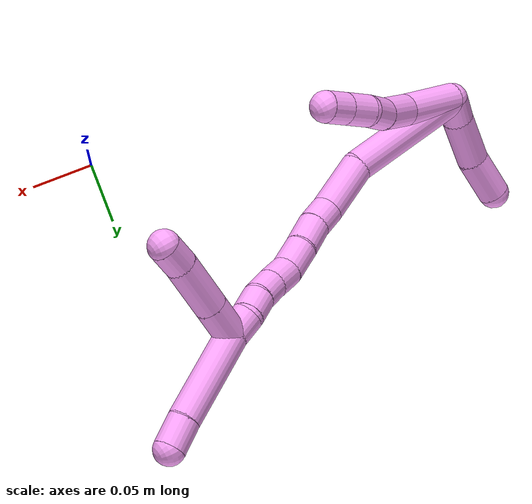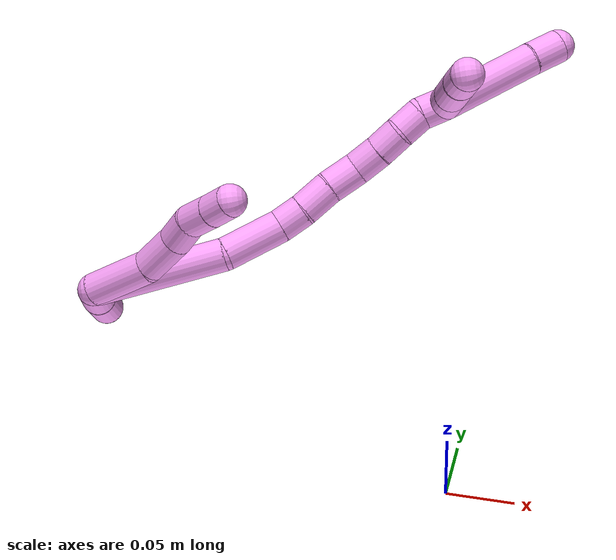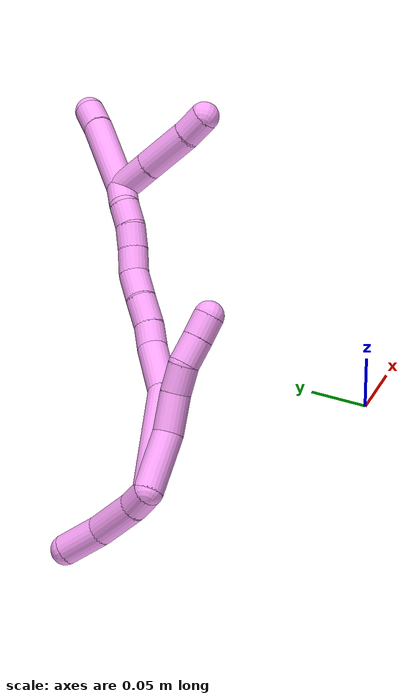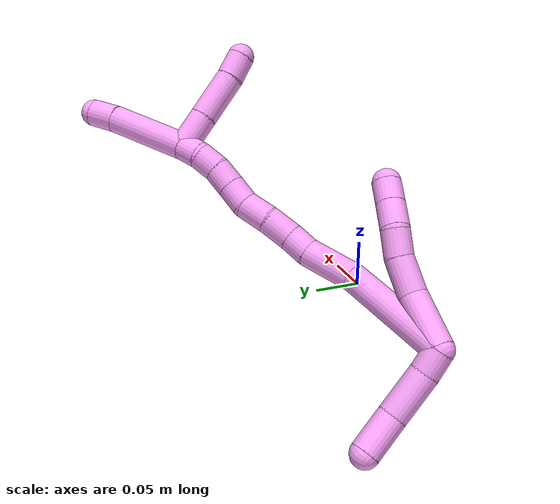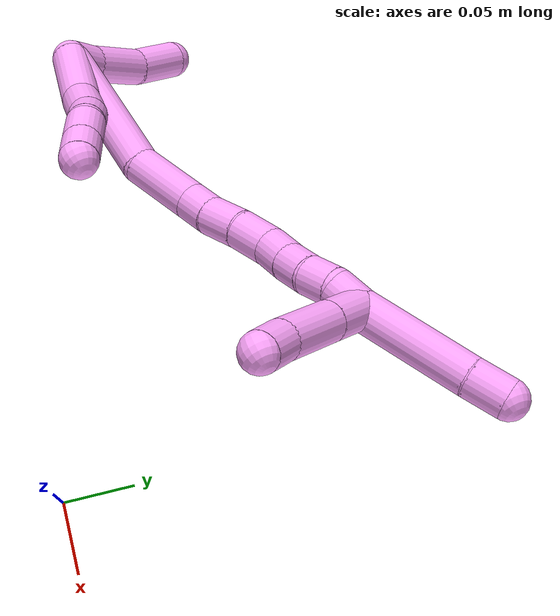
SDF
<sdf version="1.7">
 <world name="default">
  <model name="4">
   <static>0</static>
   <link name="4">
    <collision name="collision-cylinder-e_1_2_8">
     <pose>0.009515 0.000606 -0.023069 -3.11534 0.391075 -3.00923</pose>
     <geometry><cylinder><radius>0.0125</radius><length>0.049923</length></cylinder></geometry>
     <surface>
      <friction><ode><mu>1.16</mu><mu2>1.16</mu2><slip1>0</slip1><slip2>0</slip2></ode></friction>
      <contact><ode><kp>1e+06</kp><kd>1</kd><max_vel>0</max_vel><min_depth>0.001</min_depth></ode></contact>
     </surface>
    </collision>
    <visual name="visual-cylinder-e_1_2_8">
     <pose>0.009515 0.000606 -0.023069 -3.11534 0.391075 -3.00923</pose>
     <geometry><cylinder><radius>0.0125</radius><length>0.049923</length></cylinder></geometry>
     <material><ambient>1 0.65098 0.996078 1</ambient></material>
    </visual>
    <collision name="collision-cylinder-e_2_8_9">
     <pose>0.028454 0.004708 -0.059114 -2.87837 0.611546 -2.34746</pose>
     <geometry><cylinder><radius>0.0125</radius><length>0.032829</length></cylinder></geometry>
     <surface>
      <friction><ode><mu>1.16</mu><mu2>1.16</mu2><slip1>0</slip1><slip2>0</slip2></ode></friction>
      <contact><ode><kp>1e+06</kp><kd>1</kd><max_vel>0</max_vel><min_depth>0.001</min_depth></ode></contact>
     </surface>
    </collision>
    <visual name="visual-cylinder-e_2_8_9">
     <pose>0.028454 0.004708 -0.059114 -2.87837 0.611546 -2.34746</pose>
     <geometry><cylinder><radius>0.0125</radius><length>0.032829</length></cylinder></geometry>
     <material><ambient>1 0.65098 0.996078 1</ambient></material>
    </visual>
    <collision name="collision-cylinder-e_3_9_10">
     <pose>0.046576 0.00993 -0.080001 -2.92689 0.821252 -2.6563</pose>
     <geometry><cylinder><radius>0.0125</radius><length>0.023766</length></cylinder></geometry>
     <surface>
      <friction><ode><mu>1.16</mu><mu2>1.16</mu2><slip1>0</slip1><slip2>0</slip2></ode></friction>
      <contact><ode><kp>1e+06</kp><kd>1</kd><max_vel>0</max_vel><min_depth>0.001</min_depth></ode></contact>
     </surface>
    </collision>
    <visual name="visual-cylinder-e_3_9_10">
     <pose>0.046576 0.00993 -0.080001 -2.92689 0.821252 -2.6563</pose>
     <geometry><cylinder><radius>0.0125</radius><length>0.023766</length></cylinder></geometry>
     <material><ambient>1 0.65098 0.996078 1</ambient></material>
    </visual>
    <collision name="collision-cylinder-e_4_10_11">
     <pose>0.061995 0.010512 -0.097408 3.02183 0.612412 2.76676</pose>
     <geometry><cylinder><radius>0.0125</radius><length>0.023381</length></cylinder></geometry>
     <surface>
      <friction><ode><mu>1.16</mu><mu2>1.16</mu2><slip1>0</slip1><slip2>0</slip2></ode></friction>
      <contact><ode><kp>1e+06</kp><kd>1</kd><max_vel>0</max_vel><min_depth>0.001</min_depth></ode></contact>
     </surface>
    </collision>
    <visual name="visual-cylinder-e_4_10_11">
     <pose>0.061995 0.010512 -0.097408 3.02183 0.612412 2.76676</pose>
     <geometry><cylinder><radius>0.0125</radius><length>0.023381</length></cylinder></geometry>
     <material><ambient>1 0.65098 0.996078 1</ambient></material>
    </visual>
    <collision name="collision-cylinder-e_5_11_6">
     <pose>0.07461 0.008679 -0.115017 3.05677 0.626796 2.88118</pose>
     <geometry><cylinder><radius>0.0125</radius><length>0.020101</length></cylinder></geometry>
     <surface>
      <friction><ode><mu>1.16</mu><mu2>1.16</mu2><slip1>0</slip1><slip2>0</slip2></ode></friction>
      <contact><ode><kp>1e+06</kp><kd>1</kd><max_vel>0</max_vel><min_depth>0.001</min_depth></ode></contact>
     </surface>
    </collision>
    <visual name="visual-cylinder-e_5_11_6">
     <pose>0.07461 0.008679 -0.115017 3.05677 0.626796 2.88118</pose>
     <geometry><cylinder><radius>0.0125</radius><length>0.020101</length></cylinder></geometry>
     <material><ambient>1 0.65098 0.996078 1</ambient></material>
    </visual>
    <collision name="collision-cylinder-e_1_2_12">
     <pose>-0.01065 0.001842 0.001179 -1.0014 -1.36825 0.839472</pose>
     <geometry><cylinder><radius>0.0125</radius><length>0.021744</length></cylinder></geometry>
     <surface>
      <friction><ode><mu>1.16</mu><mu2>1.16</mu2><slip1>0</slip1><slip2>0</slip2></ode></friction>
      <contact><ode><kp>1e+06</kp><kd>1</kd><max_vel>0</max_vel><min_depth>0.001</min_depth></ode></contact>
     </surface>
    </collision>
    <visual name="visual-cylinder-e_1_2_12">
     <pose>-0.01065 0.001842 0.001179 -1.0014 -1.36825 0.839472</pose>
     <geometry><cylinder><radius>0.0125</radius><length>0.021744</length></cylinder></geometry>
     <material><ambient>1 0.65098 0.996078 1</ambient></material>
    </visual>
    <collision name="collision-cylinder-e_2_12_13">
     <pose>-0.041198 0.010291 0.004606 -1.2428 -1.23349 0.93952</pose>
     <geometry><cylinder><radius>0.0125</radius><length>0.042174</length></cylinder></geometry>
     <surface>
      <friction><ode><mu>1.16</mu><mu2>1.16</mu2><slip1>0</slip1><slip2>0</slip2></ode></friction>
      <contact><ode><kp>1e+06</kp><kd>1</kd><max_vel>0</max_vel><min_depth>0.001</min_depth></ode></contact>
     </surface>
    </collision>
    <visual name="visual-cylinder-e_2_12_13">
     <pose>-0.041198 0.010291 0.004606 -1.2428 -1.23349 0.93952</pose>
     <geometry><cylinder><radius>0.0125</radius><length>0.042174</length></cylinder></geometry>
     <material><ambient>1 0.65098 0.996078 1</ambient></material>
    </visual>
    <collision name="collision-cylinder-e_3_13_5">
     <pose>-0.07651 0.025418 0.010768 -1.14031 -1.02425 0.691898</pose>
     <geometry><cylinder><radius>0.0125</radius><length>0.036082</length></cylinder></geometry>
     <surface>
      <friction><ode><mu>1.16</mu><mu2>1.16</mu2><slip1>0</slip1><slip2>0</slip2></ode></friction>
      <contact><ode><kp>1e+06</kp><kd>1</kd><max_vel>0</max_vel><min_depth>0.001</min_depth></ode></contact>
     </surface>
    </collision>
    <visual name="visual-cylinder-e_3_13_5">
     <pose>-0.07651 0.025418 0.010768 -1.14031 -1.02425 0.691898</pose>
     <geometry><cylinder><radius>0.0125</radius><length>0.036082</length></cylinder></geometry>
     <material><ambient>1 0.65098 0.996078 1</ambient></material>
    </visual>
    <collision name="collision-cylinder-e_1_2_14">
     <pose>-0.000166 0.00559 -0.050095 -3.03046 -0.003284 0.059023</pose>
     <geometry><cylinder><radius>0.0125</radius><length>0.100812</length></cylinder></geometry>
     <surface>
      <friction><ode><mu>1.16</mu><mu2>1.16</mu2><slip1>0</slip1><slip2>0</slip2></ode></friction>
      <contact><ode><kp>1e+06</kp><kd>1</kd><max_vel>0</max_vel><min_depth>0.001</min_depth></ode></contact>
     </surface>
    </collision>
    <visual name="visual-cylinder-e_1_2_14">
     <pose>-0.000166 0.00559 -0.050095 -3.03046 -0.003284 0.059023</pose>
     <geometry><cylinder><radius>0.0125</radius><length>0.100812</length></cylinder></geometry>
     <material><ambient>1 0.65098 0.996078 1</ambient></material>
    </visual>
    <collision name="collision-cylinder-e_2_14_15">
     <pose>-0.002625 0.020246 -0.121019 -2.73107 -0.100631 0.474641</pose>
     <geometry><cylinder><radius>0.0125</radius><length>0.045665</length></cylinder></geometry>
     <surface>
      <friction><ode><mu>1.16</mu><mu2>1.16</mu2><slip1>0</slip1><slip2>0</slip2></ode></friction>
      <contact><ode><kp>1e+06</kp><kd>1</kd><max_vel>0</max_vel><min_depth>0.001</min_depth></ode></contact>
     </surface>
    </collision>
    <visual name="visual-cylinder-e_2_14_15">
     <pose>-0.002625 0.020246 -0.121019 -2.73107 -0.100631 0.474641</pose>
     <geometry><cylinder><radius>0.0125</radius><length>0.045665</length></cylinder></geometry>
     <material><ambient>1 0.65098 0.996078 1</ambient></material>
    </visual>
    <collision name="collision-cylinder-e_3_15_16">
     <pose>-0.0036 0.033617 -0.1512 -2.71017 0.127365 -0.566397</pose>
     <geometry><cylinder><radius>0.0125</radius><length>0.020756</length></cylinder></geometry>
     <surface>
      <friction><ode><mu>1.16</mu><mu2>1.16</mu2><slip1>0</slip1><slip2>0</slip2></ode></friction>
      <contact><ode><kp>1e+06</kp><kd>1</kd><max_vel>0</max_vel><min_depth>0.001</min_depth></ode></contact>
     </surface>
    </collision>
    <visual name="visual-cylinder-e_3_15_16">
     <pose>-0.0036 0.033617 -0.1512 -2.71017 0.127365 -0.566397</pose>
     <geometry><cylinder><radius>0.0125</radius><length>0.020756</length></cylinder></geometry>
     <material><ambient>1 0.65098 0.996078 1</ambient></material>
    </visual>
    <collision name="collision-cylinder-e_4_16_17">
     <pose>-0.001014 0.044749 -0.171141 -2.56899 0.100322 -0.337816</pose>
     <geometry><cylinder><radius>0.0125</radius><length>0.025328</length></cylinder></geometry>
     <surface>
      <friction><ode><mu>1.16</mu><mu2>1.16</mu2><slip1>0</slip1><slip2>0</slip2></ode></friction>
      <contact><ode><kp>1e+06</kp><kd>1</kd><max_vel>0</max_vel><min_depth>0.001</min_depth></ode></contact>
     </surface>
    </collision>
    <visual name="visual-cylinder-e_4_16_17">
     <pose>-0.001014 0.044749 -0.171141 -2.56899 0.100322 -0.337816</pose>
     <geometry><cylinder><radius>0.0125</radius><length>0.025328</length></cylinder></geometry>
     <material><ambient>1 0.65098 0.996078 1</ambient></material>
    </visual>
    <collision name="collision-cylinder-e_5_17_18">
     <pose>0.00024 0.057476 -0.192701 -2.64813 -0.001156 0.004591</pose>
     <geometry><cylinder><radius>0.0125</radius><length>0.02491</length></cylinder></geometry>
     <surface>
      <friction><ode><mu>1.16</mu><mu2>1.16</mu2><slip1>0</slip1><slip2>0</slip2></ode></friction>
      <contact><ode><kp>1e+06</kp><kd>1</kd><max_vel>0</max_vel><min_depth>0.001</min_depth></ode></contact>
     </surface>
    </collision>
    <visual name="visual-cylinder-e_5_17_18">
     <pose>0.00024 0.057476 -0.192701 -2.64813 -0.001156 0.004591</pose>
     <geometry><cylinder><radius>0.0125</radius><length>0.02491</length></cylinder></geometry>
     <material><ambient>1 0.65098 0.996078 1</ambient></material>
    </visual>
    <collision name="collision-cylinder-e_6_18_19">
     <pose>0.003335 0.06738 -0.213203 -2.74392 0.292116 -1.26123</pose>
     <geometry><cylinder><radius>0.0125</radius><length>0.021595</length></cylinder></geometry>
     <surface>
      <friction><ode><mu>1.16</mu><mu2>1.16</mu2><slip1>0</slip1><slip2>0</slip2></ode></friction>
      <contact><ode><kp>1e+06</kp><kd>1</kd><max_vel>0</max_vel><min_depth>0.001</min_depth></ode></contact>
     </surface>
    </collision>
    <visual name="visual-cylinder-e_6_18_19">
     <pose>0.003335 0.06738 -0.213203 -2.74392 0.292116 -1.26123</pose>
     <geometry><cylinder><radius>0.0125</radius><length>0.021595</length></cylinder></geometry>
     <material><ambient>1 0.65098 0.996078 1</ambient></material>
    </visual>
    <collision name="collision-cylinder-e_7_19_20">
     <pose>0.009598 0.075905 -0.231486 -2.6647 0.309897 -1.14233</pose>
     <geometry><cylinder><radius>0.0125</radius><length>0.02068</length></cylinder></geometry>
     <surface>
      <friction><ode><mu>1.16</mu><mu2>1.16</mu2><slip1>0</slip1><slip2>0</slip2></ode></friction>
      <contact><ode><kp>1e+06</kp><kd>1</kd><max_vel>0</max_vel><min_depth>0.001</min_depth></ode></contact>
     </surface>
    </collision>
    <visual name="visual-cylinder-e_7_19_20">
     <pose>0.009598 0.075905 -0.231486 -2.6647 0.309897 -1.14233</pose>
     <geometry><cylinder><radius>0.0125</radius><length>0.02068</length></cylinder></geometry>
     <material><ambient>1 0.65098 0.996078 1</ambient></material>
    </visual>
    <collision name="collision-cylinder-e_8_20_21">
     <pose>0.013978 0.085823 -0.248659 -2.57175 0.12203 -0.41126</pose>
     <geometry><cylinder><radius>0.0125</radius><length>0.020162</length></cylinder></geometry>
     <surface>
      <friction><ode><mu>1.16</mu><mu2>1.16</mu2><slip1>0</slip1><slip2>0</slip2></ode></friction>
      <contact><ode><kp>1e+06</kp><kd>1</kd><max_vel>0</max_vel><min_depth>0.001</min_depth></ode></contact>
     </surface>
    </collision>
    <visual name="visual-cylinder-e_8_20_21">
     <pose>0.013978 0.085823 -0.248659 -2.57175 0.12203 -0.41126</pose>
     <geometry><cylinder><radius>0.0125</radius><length>0.020162</length></cylinder></geometry>
     <material><ambient>1 0.65098 0.996078 1</ambient></material>
    </visual>
    <collision name="collision-cylinder-e_9_21_1">
     <pose>0.014065 0.094489 -0.266514 -2.808 -0.113751 0.652222</pose>
     <geometry><cylinder><radius>0.0125</radius><length>0.020091</length></cylinder></geometry>
     <surface>
      <friction><ode><mu>1.16</mu><mu2>1.16</mu2><slip1>0</slip1><slip2>0</slip2></ode></friction>
      <contact><ode><kp>1e+06</kp><kd>1</kd><max_vel>0</max_vel><min_depth>0.001</min_depth></ode></contact>
     </surface>
    </collision>
    <visual name="visual-cylinder-e_9_21_1">
     <pose>0.014065 0.094489 -0.266514 -2.808 -0.113751 0.652222</pose>
     <geometry><cylinder><radius>0.0125</radius><length>0.020091</length></cylinder></geometry>
     <material><ambient>1 0.65098 0.996078 1</ambient></material>
    </visual>
    <collision name="collision-cylinder-e_1_1_22">
     <pose>0.006071 0.114488 -0.309063 -2.6738 -0.182669 0.733992</pose>
     <geometry><cylinder><radius>0.0125</radius><length>0.075465</length></cylinder></geometry>
     <surface>
      <friction><ode><mu>1.16</mu><mu2>1.16</mu2><slip1>0</slip1><slip2>0</slip2></ode></friction>
      <contact><ode><kp>1e+06</kp><kd>1</kd><max_vel>0</max_vel><min_depth>0.001</min_depth></ode></contact>
     </surface>
    </collision>
    <visual name="visual-cylinder-e_1_1_22">
     <pose>0.006071 0.114488 -0.309063 -2.6738 -0.182669 0.733992</pose>
     <geometry><cylinder><radius>0.0125</radius><length>0.075465</length></cylinder></geometry>
     <material><ambient>1 0.65098 0.996078 1</ambient></material>
    </visual>
    <collision name="collision-cylinder-e_2_22_4">
     <pose>-0.004066 0.136824 -0.352588 -2.64762 -0.270876 0.990991</pose>
     <geometry><cylinder><radius>0.0125</radius><length>0.024535</length></cylinder></geometry>
     <surface>
      <friction><ode><mu>1.16</mu><mu2>1.16</mu2><slip1>0</slip1><slip2>0</slip2></ode></friction>
      <contact><ode><kp>1e+06</kp><kd>1</kd><max_vel>0</max_vel><min_depth>0.001</min_depth></ode></contact>
     </surface>
    </collision>
    <visual name="visual-cylinder-e_2_22_4">
     <pose>-0.004066 0.136824 -0.352588 -2.64762 -0.270876 0.990991</pose>
     <geometry><cylinder><radius>0.0125</radius><length>0.024535</length></cylinder></geometry>
     <material><ambient>1 0.65098 0.996078 1</ambient></material>
    </visual>
    <collision name="collision-cylinder-e_1_1_23">
     <pose>0.027612 0.09183 -0.280096 2.1818 1.11298 1.74817</pose>
     <geometry><cylinder><radius>0.0125</radius><length>0.032746</length></cylinder></geometry>
     <surface>
      <friction><ode><mu>1.16</mu><mu2>1.16</mu2><slip1>0</slip1><slip2>0</slip2></ode></friction>
      <contact><ode><kp>1e+06</kp><kd>1</kd><max_vel>0</max_vel><min_depth>0.001</min_depth></ode></contact>
     </surface>
    </collision>
    <visual name="visual-cylinder-e_1_1_23">
     <pose>0.027612 0.09183 -0.280096 2.1818 1.11298 1.74817</pose>
     <geometry><cylinder><radius>0.0125</radius><length>0.032746</length></cylinder></geometry>
     <material><ambient>1 0.65098 0.996078 1</ambient></material>
    </visual>
    <collision name="collision-cylinder-e_2_23_24">
     <pose>0.062206 0.077795 -0.289929 2.18205 1.10929 1.74441</pose>
     <geometry><cylinder><radius>0.0125</radius><length>0.044465</length></cylinder></geometry>
     <surface>
      <friction><ode><mu>1.16</mu><mu2>1.16</mu2><slip1>0</slip1><slip2>0</slip2></ode></friction>
      <contact><ode><kp>1e+06</kp><kd>1</kd><max_vel>0</max_vel><min_depth>0.001</min_depth></ode></contact>
     </surface>
    </collision>
    <visual name="visual-cylinder-e_2_23_24">
     <pose>0.062206 0.077795 -0.289929 2.18205 1.10929 1.74441</pose>
     <geometry><cylinder><radius>0.0125</radius><length>0.044465</length></cylinder></geometry>
     <material><ambient>1 0.65098 0.996078 1</ambient></material>
    </visual>
    <collision name="collision-cylinder-e_3_24_3">
     <pose>0.092291 0.066377 -0.299519 2.43878 1.10455 2.06822</pose>
     <geometry><cylinder><radius>0.0125</radius><length>0.022789</length></cylinder></geometry>
     <surface>
      <friction><ode><mu>1.16</mu><mu2>1.16</mu2><slip1>0</slip1><slip2>0</slip2></ode></friction>
      <contact><ode><kp>1e+06</kp><kd>1</kd><max_vel>0</max_vel><min_depth>0.001</min_depth></ode></contact>
     </surface>
    </collision>
    <visual name="visual-cylinder-e_3_24_3">
     <pose>0.092291 0.066377 -0.299519 2.43878 1.10455 2.06822</pose>
     <geometry><cylinder><radius>0.0125</radius><length>0.022789</length></cylinder></geometry>
     <material><ambient>1 0.65098 0.996078 1</ambient></material>
    </visual>
    <collision name="collision-sphere-3">
     <pose>0.102469 0.063066 -0.303428 0 -0 0</pose>
     <geometry><sphere><radius>0.0125</radius></sphere></geometry>
     <surface>
      <friction><ode><mu>1.16</mu><mu2>1.16</mu2><slip1>0</slip1><slip2>0</slip2></ode></friction>
      <contact><ode><kp>1e+06</kp><kd>1</kd><max_vel>0</max_vel><min_depth>0.001</min_depth></ode></contact>
     </surface>
    </collision>
    <visual name="visual-sphere-3">
     <pose>0.102469 0.063066 -0.303428 0 -0 0</pose>
     <geometry><sphere><radius>0.0125</radius></sphere></geometry>
     <material><ambient>1 0.65098 0.996078 1</ambient></material>
    </visual>
    <collision name="collision-sphere-24">
     <pose>0.082113 0.069688 -0.295611 0 -0 0</pose>
     <geometry><sphere><radius>0.0125</radius></sphere></geometry>
     <surface>
      <friction><ode><mu>1.16</mu><mu2>1.16</mu2><slip1>0</slip1><slip2>0</slip2></ode></friction>
      <contact><ode><kp>1e+06</kp><kd>1</kd><max_vel>0</max_vel><min_depth>0.001</min_depth></ode></contact>
     </surface>
    </collision>
    <visual name="visual-sphere-24">
     <pose>0.082113 0.069688 -0.295611 0 -0 0</pose>
     <geometry><sphere><radius>0.0125</radius></sphere></geometry>
     <material><ambient>1 0.65098 0.996078 1</ambient></material>
    </visual>
    <collision name="collision-sphere-23">
     <pose>0.042299 0.085903 -0.284248 0 -0 0</pose>
     <geometry><sphere><radius>0.0125</radius></sphere></geometry>
     <surface>
      <friction><ode><mu>1.16</mu><mu2>1.16</mu2><slip1>0</slip1><slip2>0</slip2></ode></friction>
      <contact><ode><kp>1e+06</kp><kd>1</kd><max_vel>0</max_vel><min_depth>0.001</min_depth></ode></contact>
     </surface>
    </collision>
    <visual name="visual-sphere-23">
     <pose>0.042299 0.085903 -0.284248 0 -0 0</pose>
     <geometry><sphere><radius>0.0125</radius></sphere></geometry>
     <material><ambient>1 0.65098 0.996078 1</ambient></material>
    </visual>
    <collision name="collision-sphere-4">
     <pose>-0.007348 0.142428 -0.362996 0 -0 0</pose>
     <geometry><sphere><radius>0.0125</radius></sphere></geometry>
     <surface>
      <friction><ode><mu>1.16</mu><mu2>1.16</mu2><slip1>0</slip1><slip2>0</slip2></ode></friction>
      <contact><ode><kp>1e+06</kp><kd>1</kd><max_vel>0</max_vel><min_depth>0.001</min_depth></ode></contact>
     </surface>
    </collision>
    <visual name="visual-sphere-4">
     <pose>-0.007348 0.142428 -0.362996 0 -0 0</pose>
     <geometry><sphere><radius>0.0125</radius></sphere></geometry>
     <material><ambient>1 0.65098 0.996078 1</ambient></material>
    </visual>
    <collision name="collision-sphere-22">
     <pose>-0.000783 0.13122 -0.342181 0 -0 0</pose>
     <geometry><sphere><radius>0.0125</radius></sphere></geometry>
     <surface>
      <friction><ode><mu>1.16</mu><mu2>1.16</mu2><slip1>0</slip1><slip2>0</slip2></ode></friction>
      <contact><ode><kp>1e+06</kp><kd>1</kd><max_vel>0</max_vel><min_depth>0.001</min_depth></ode></contact>
     </surface>
    </collision>
    <visual name="visual-sphere-22">
     <pose>-0.000783 0.13122 -0.342181 0 -0 0</pose>
     <geometry><sphere><radius>0.0125</radius></sphere></geometry>
     <material><ambient>1 0.65098 0.996078 1</ambient></material>
    </visual>
    <collision name="collision-sphere-1">
     <pose>0.012925 0.097757 -0.275945 0 -0 0</pose>
     <geometry><sphere><radius>0.0125</radius></sphere></geometry>
     <surface>
      <friction><ode><mu>1.16</mu><mu2>1.16</mu2><slip1>0</slip1><slip2>0</slip2></ode></friction>
      <contact><ode><kp>1e+06</kp><kd>1</kd><max_vel>0</max_vel><min_depth>0.001</min_depth></ode></contact>
     </surface>
    </collision>
    <visual name="visual-sphere-1">
     <pose>0.012925 0.097757 -0.275945 0 -0 0</pose>
     <geometry><sphere><radius>0.0125</radius></sphere></geometry>
     <material><ambient>1 0.65098 0.996078 1</ambient></material>
    </visual>
    <collision name="collision-sphere-21">
     <pose>0.015206 0.091221 -0.257084 0 -0 0</pose>
     <geometry><sphere><radius>0.0125</radius></sphere></geometry>
     <surface>
      <friction><ode><mu>1.16</mu><mu2>1.16</mu2><slip1>0</slip1><slip2>0</slip2></ode></friction>
      <contact><ode><kp>1e+06</kp><kd>1</kd><max_vel>0</max_vel><min_depth>0.001</min_depth></ode></contact>
     </surface>
    </collision>
    <visual name="visual-sphere-21">
     <pose>0.015206 0.091221 -0.257084 0 -0 0</pose>
     <geometry><sphere><radius>0.0125</radius></sphere></geometry>
     <material><ambient>1 0.65098 0.996078 1</ambient></material>
    </visual>
    <collision name="collision-sphere-6">
     <pose>0.080505 0.00799 -0.123128 0 -0 0</pose>
     <geometry><sphere><radius>0.0125</radius></sphere></geometry>
     <surface>
      <friction><ode><mu>1.16</mu><mu2>1.16</mu2><slip1>0</slip1><slip2>0</slip2></ode></friction>
      <contact><ode><kp>1e+06</kp><kd>1</kd><max_vel>0</max_vel><min_depth>0.001</min_depth></ode></contact>
     </surface>
    </collision>
    <visual name="visual-sphere-6">
     <pose>0.080505 0.00799 -0.123128 0 -0 0</pose>
     <geometry><sphere><radius>0.0125</radius></sphere></geometry>
     <material><ambient>1 0.65098 0.996078 1</ambient></material>
    </visual>
    <collision name="collision-sphere-11">
     <pose>0.068715 0.009369 -0.106906 0 -0 0</pose>
     <geometry><sphere><radius>0.0125</radius></sphere></geometry>
     <surface>
      <friction><ode><mu>1.16</mu><mu2>1.16</mu2><slip1>0</slip1><slip2>0</slip2></ode></friction>
      <contact><ode><kp>1e+06</kp><kd>1</kd><max_vel>0</max_vel><min_depth>0.001</min_depth></ode></contact>
     </surface>
    </collision>
    <visual name="visual-sphere-11">
     <pose>0.068715 0.009369 -0.106906 0 -0 0</pose>
     <geometry><sphere><radius>0.0125</radius></sphere></geometry>
     <material><ambient>1 0.65098 0.996078 1</ambient></material>
    </visual>
    <collision name="collision-sphere-10">
     <pose>0.055274 0.011655 -0.087911 0 -0 0</pose>
     <geometry><sphere><radius>0.0125</radius></sphere></geometry>
     <surface>
      <friction><ode><mu>1.16</mu><mu2>1.16</mu2><slip1>0</slip1><slip2>0</slip2></ode></friction>
      <contact><ode><kp>1e+06</kp><kd>1</kd><max_vel>0</max_vel><min_depth>0.001</min_depth></ode></contact>
     </surface>
    </collision>
    <visual name="visual-sphere-10">
     <pose>0.055274 0.011655 -0.087911 0 -0 0</pose>
     <geometry><sphere><radius>0.0125</radius></sphere></geometry>
     <material><ambient>1 0.65098 0.996078 1</ambient></material>
    </visual>
    <collision name="collision-sphere-9">
     <pose>0.037878 0.008205 -0.072091 0 -0 0</pose>
     <geometry><sphere><radius>0.0125</radius></sphere></geometry>
     <surface>
      <friction><ode><mu>1.16</mu><mu2>1.16</mu2><slip1>0</slip1><slip2>0</slip2></ode></friction>
      <contact><ode><kp>1e+06</kp><kd>1</kd><max_vel>0</max_vel><min_depth>0.001</min_depth></ode></contact>
     </surface>
    </collision>
    <visual name="visual-sphere-9">
     <pose>0.037878 0.008205 -0.072091 0 -0 0</pose>
     <geometry><sphere><radius>0.0125</radius></sphere></geometry>
     <material><ambient>1 0.65098 0.996078 1</ambient></material>
    </visual>
    <collision name="collision-sphere-2">
     <geometry><sphere><radius>0.0125</radius></sphere></geometry>
     <surface>
      <friction><ode><mu>1.16</mu><mu2>1.16</mu2><slip1>0</slip1><slip2>0</slip2></ode></friction>
      <contact><ode><kp>1e+06</kp><kd>1</kd><max_vel>0</max_vel><min_depth>0.001</min_depth></ode></contact>
     </surface>
    </collision>
    <visual name="visual-sphere-2">
     <geometry><sphere><radius>0.0125</radius></sphere></geometry>
     <material><ambient>1 0.65098 0.996078 1</ambient></material>
    </visual>
    <collision name="collision-sphere-19">
     <pose>0.006445 0.071384 -0.222737 0 -0 0</pose>
     <geometry><sphere><radius>0.0125</radius></sphere></geometry>
     <surface>
      <friction><ode><mu>1.16</mu><mu2>1.16</mu2><slip1>0</slip1><slip2>0</slip2></ode></friction>
      <contact><ode><kp>1e+06</kp><kd>1</kd><max_vel>0</max_vel><min_depth>0.001</min_depth></ode></contact>
     </surface>
    </collision>
    <visual name="visual-sphere-19">
     <pose>0.006445 0.071384 -0.222737 0 -0 0</pose>
     <geometry><sphere><radius>0.0125</radius></sphere></geometry>
     <material><ambient>1 0.65098 0.996078 1</ambient></material>
    </visual>
    <collision name="collision-sphere-8">
     <pose>0.01903 0.001212 -0.046138 0 -0 0</pose>
     <geometry><sphere><radius>0.0125</radius></sphere></geometry>
     <surface>
      <friction><ode><mu>1.16</mu><mu2>1.16</mu2><slip1>0</slip1><slip2>0</slip2></ode></friction>
      <contact><ode><kp>1e+06</kp><kd>1</kd><max_vel>0</max_vel><min_depth>0.001</min_depth></ode></contact>
     </surface>
    </collision>
    <visual name="visual-sphere-8">
     <pose>0.01903 0.001212 -0.046138 0 -0 0</pose>
     <geometry><sphere><radius>0.0125</radius></sphere></geometry>
     <material><ambient>1 0.65098 0.996078 1</ambient></material>
    </visual>
    <collision name="collision-sphere-12">
     <pose>-0.021299 0.003684 0.002358 0 -0 0</pose>
     <geometry><sphere><radius>0.0125</radius></sphere></geometry>
     <surface>
      <friction><ode><mu>1.16</mu><mu2>1.16</mu2><slip1>0</slip1><slip2>0</slip2></ode></friction>
      <contact><ode><kp>1e+06</kp><kd>1</kd><max_vel>0</max_vel><min_depth>0.001</min_depth></ode></contact>
     </surface>
    </collision>
    <visual name="visual-sphere-12">
     <pose>-0.021299 0.003684 0.002358 0 -0 0</pose>
     <geometry><sphere><radius>0.0125</radius></sphere></geometry>
     <material><ambient>1 0.65098 0.996078 1</ambient></material>
    </visual>
    <collision name="collision-sphere-13">
     <pose>-0.061097 0.016897 0.006855 0 -0 0</pose>
     <geometry><sphere><radius>0.0125</radius></sphere></geometry>
     <surface>
      <friction><ode><mu>1.16</mu><mu2>1.16</mu2><slip1>0</slip1><slip2>0</slip2></ode></friction>
      <contact><ode><kp>1e+06</kp><kd>1</kd><max_vel>0</max_vel><min_depth>0.001</min_depth></ode></contact>
     </surface>
    </collision>
    <visual name="visual-sphere-13">
     <pose>-0.061097 0.016897 0.006855 0 -0 0</pose>
     <geometry><sphere><radius>0.0125</radius></sphere></geometry>
     <material><ambient>1 0.65098 0.996078 1</ambient></material>
    </visual>
    <collision name="collision-sphere-5">
     <pose>-0.091923 0.033939 0.01468 0 -0 0</pose>
     <geometry><sphere><radius>0.0125</radius></sphere></geometry>
     <surface>
      <friction><ode><mu>1.16</mu><mu2>1.16</mu2><slip1>0</slip1><slip2>0</slip2></ode></friction>
      <contact><ode><kp>1e+06</kp><kd>1</kd><max_vel>0</max_vel><min_depth>0.001</min_depth></ode></contact>
     </surface>
    </collision>
    <visual name="visual-sphere-5">
     <pose>-0.091923 0.033939 0.01468 0 -0 0</pose>
     <geometry><sphere><radius>0.0125</radius></sphere></geometry>
     <material><ambient>1 0.65098 0.996078 1</ambient></material>
    </visual>
    <collision name="collision-sphere-14">
     <pose>-0.000331 0.01118 -0.10019 0 -0 0</pose>
     <geometry><sphere><radius>0.0125</radius></sphere></geometry>
     <surface>
      <friction><ode><mu>1.16</mu><mu2>1.16</mu2><slip1>0</slip1><slip2>0</slip2></ode></friction>
      <contact><ode><kp>1e+06</kp><kd>1</kd><max_vel>0</max_vel><min_depth>0.001</min_depth></ode></contact>
     </surface>
    </collision>
    <visual name="visual-sphere-14">
     <pose>-0.000331 0.01118 -0.10019 0 -0 0</pose>
     <geometry><sphere><radius>0.0125</radius></sphere></geometry>
     <material><ambient>1 0.65098 0.996078 1</ambient></material>
    </visual>
    <collision name="collision-sphere-15">
     <pose>-0.004919 0.029312 -0.141849 0 -0 0</pose>
     <geometry><sphere><radius>0.0125</radius></sphere></geometry>
     <surface>
      <friction><ode><mu>1.16</mu><mu2>1.16</mu2><slip1>0</slip1><slip2>0</slip2></ode></friction>
      <contact><ode><kp>1e+06</kp><kd>1</kd><max_vel>0</max_vel><min_depth>0.001</min_depth></ode></contact>
     </surface>
    </collision>
    <visual name="visual-sphere-15">
     <pose>-0.004919 0.029312 -0.141849 0 -0 0</pose>
     <geometry><sphere><radius>0.0125</radius></sphere></geometry>
     <material><ambient>1 0.65098 0.996078 1</ambient></material>
    </visual>
    <collision name="collision-sphere-16">
     <pose>-0.002282 0.037922 -0.160551 0 -0 0</pose>
     <geometry><sphere><radius>0.0125</radius></sphere></geometry>
     <surface>
      <friction><ode><mu>1.16</mu><mu2>1.16</mu2><slip1>0</slip1><slip2>0</slip2></ode></friction>
      <contact><ode><kp>1e+06</kp><kd>1</kd><max_vel>0</max_vel><min_depth>0.001</min_depth></ode></contact>
     </surface>
    </collision>
    <visual name="visual-sphere-16">
     <pose>-0.002282 0.037922 -0.160551 0 -0 0</pose>
     <geometry><sphere><radius>0.0125</radius></sphere></geometry>
     <material><ambient>1 0.65098 0.996078 1</ambient></material>
    </visual>
    <collision name="collision-sphere-17">
     <pose>0.000255 0.051576 -0.181732 0 -0 0</pose>
     <geometry><sphere><radius>0.0125</radius></sphere></geometry>
     <surface>
      <friction><ode><mu>1.16</mu><mu2>1.16</mu2><slip1>0</slip1><slip2>0</slip2></ode></friction>
      <contact><ode><kp>1e+06</kp><kd>1</kd><max_vel>0</max_vel><min_depth>0.001</min_depth></ode></contact>
     </surface>
    </collision>
    <visual name="visual-sphere-17">
     <pose>0.000255 0.051576 -0.181732 0 -0 0</pose>
     <geometry><sphere><radius>0.0125</radius></sphere></geometry>
     <material><ambient>1 0.65098 0.996078 1</ambient></material>
    </visual>
    <collision name="collision-sphere-18">
     <pose>0.000226 0.063375 -0.20367 0 -0 0</pose>
     <geometry><sphere><radius>0.0125</radius></sphere></geometry>
     <surface>
      <friction><ode><mu>1.16</mu><mu2>1.16</mu2><slip1>0</slip1><slip2>0</slip2></ode></friction>
      <contact><ode><kp>1e+06</kp><kd>1</kd><max_vel>0</max_vel><min_depth>0.001</min_depth></ode></contact>
     </surface>
    </collision>
    <visual name="visual-sphere-18">
     <pose>0.000226 0.063375 -0.20367 0 -0 0</pose>
     <geometry><sphere><radius>0.0125</radius></sphere></geometry>
     <material><ambient>1 0.65098 0.996078 1</ambient></material>
    </visual>
    <collision name="collision-sphere-20">
     <pose>0.012751 0.080425 -0.240234 0 -0 0</pose>
     <geometry><sphere><radius>0.0125</radius></sphere></geometry>
     <surface>
      <friction><ode><mu>1.16</mu><mu2>1.16</mu2><slip1>0</slip1><slip2>0</slip2></ode></friction>
      <contact><ode><kp>1e+06</kp><kd>1</kd><max_vel>0</max_vel><min_depth>0.001</min_depth></ode></contact>
     </surface>
    </collision>
    <visual name="visual-sphere-20">
     <pose>0.012751 0.080425 -0.240234 0 -0 0</pose>
     <geometry><sphere><radius>0.0125</radius></sphere></geometry>
     <material><ambient>1 0.65098 0.996078 1</ambient></material>
    </visual>
    <inertial>
     <pose>0.009962 0.044817 -0.14993 0 -0 0</pose>
     <mass>0.75</mass>
     <inertia>
      <ixx>0.000167</ixx>
      <ixy>0</ixy>
      <ixz>0</ixz>
      <iyy>-3.1e-05</iyy>
      <iyz>0</iyz>
      <izz>-8.1e-05</izz>
     </inertia>
    </inertial>
   </link>
   <pose>-0.279217 0.074178 0.082612 2.06455 -1.09363 -1.81371</pose>
  </model>
 </world>
</sdf>
